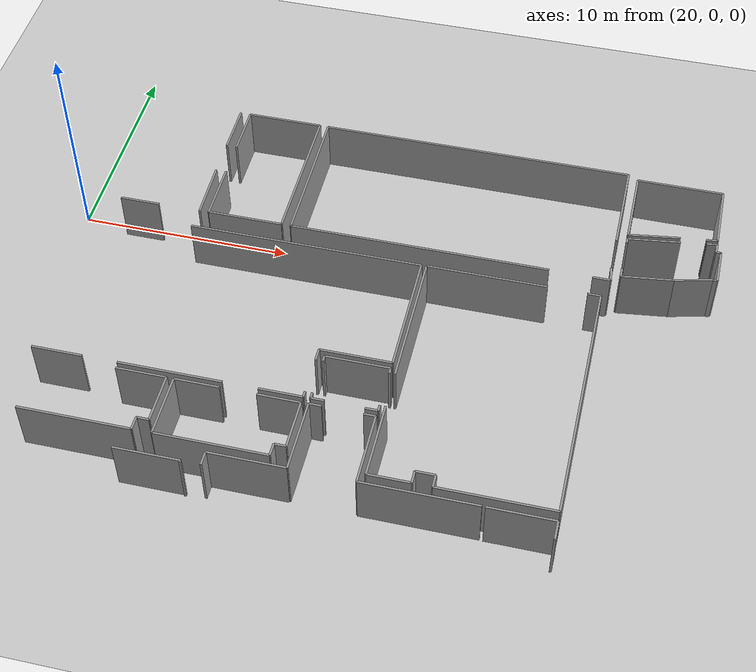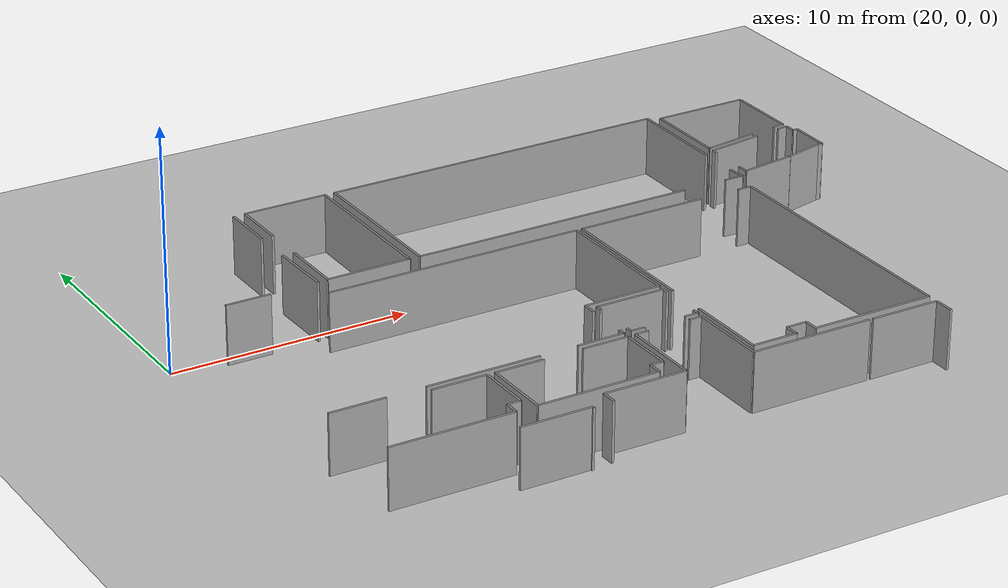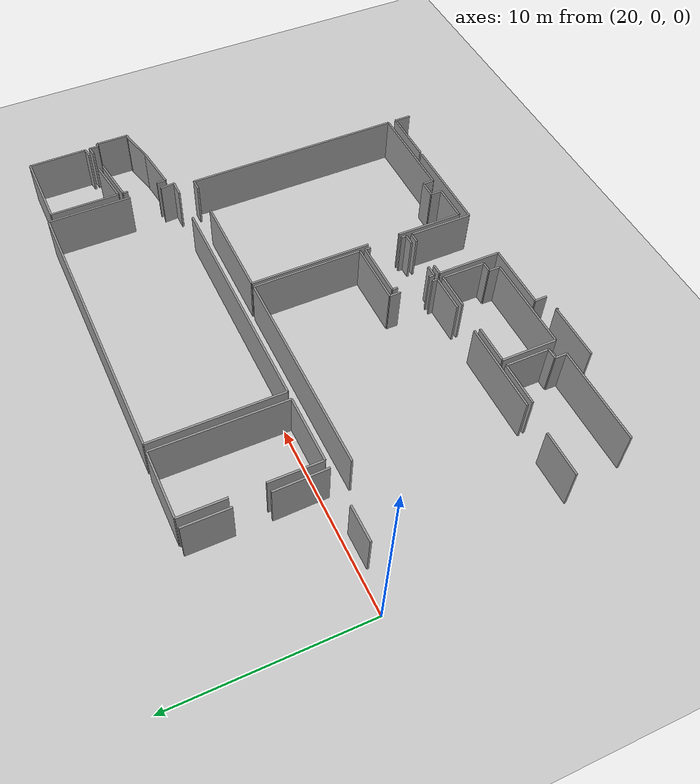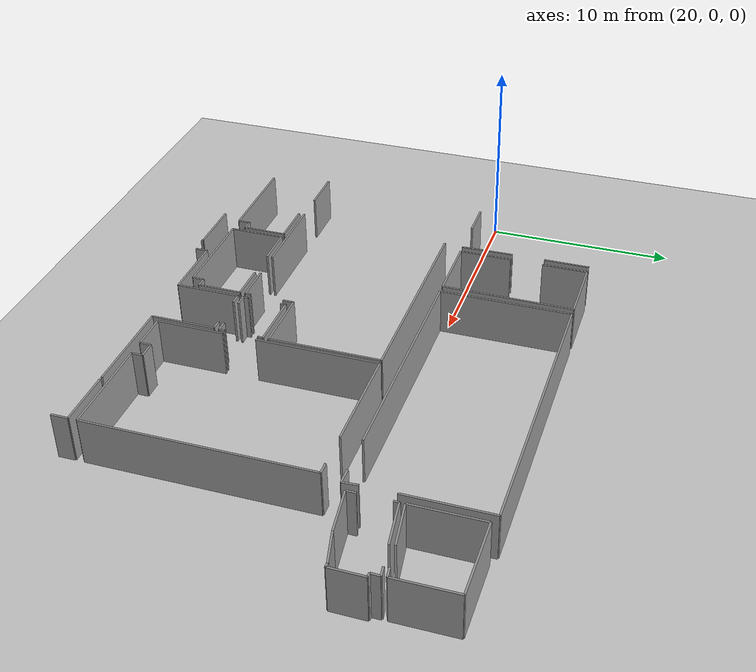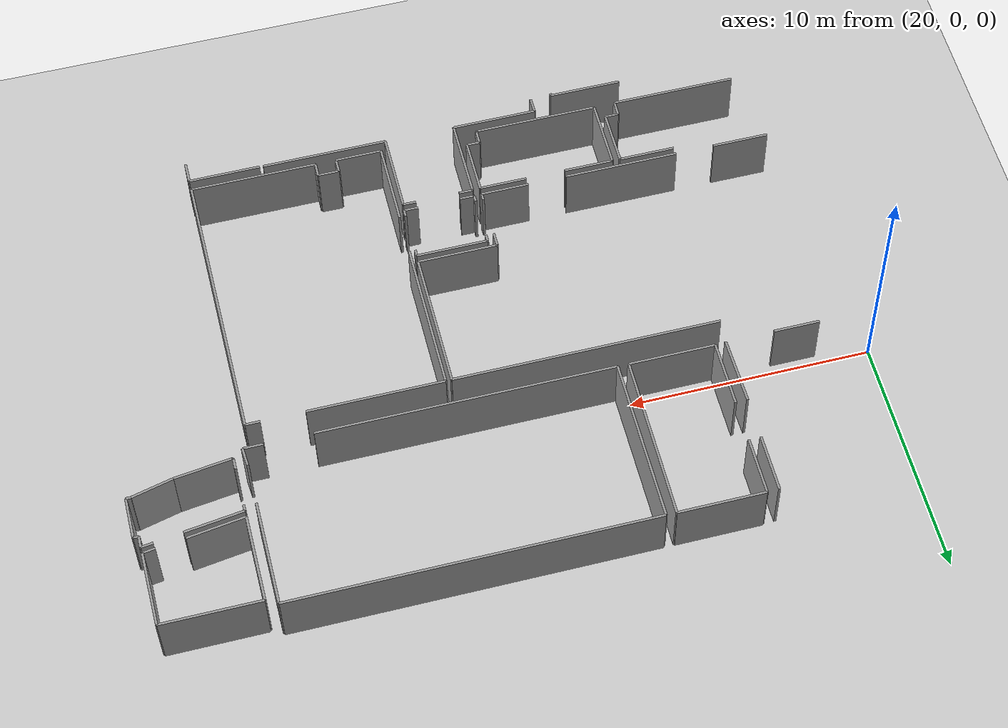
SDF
<sdf version="1.6">
 <world name="default">
  <model name="ground_plane">
   <static>1</static>
   <link name="link">
    <collision name="collision">
     <geometry><plane><normal>0 0 1</normal><size>100 100</size></plane></geometry>
     <surface><friction><ode><mu>100</mu><mu2>50</mu2></ode></friction></surface>
    </collision>
    <visual name="visual">
     <cast_shadows>0</cast_shadows>
     <geometry><plane><normal>0 0 1</normal><size>100 100</size></plane></geometry>
     <material>
      <script><uri>file://media/materials/scripts/gazebo.material</uri><name>Gazebo/Grey</name></script>
     </material>
    </visual>
   </link>
  </model>
  <model name="0510032260_A_40_1_102">
   <static>1</static>
   <link name="Wall_342">
    <collision name="Wall_342_Collision">
     <geometry><box><size>3.28410872145 0.1 2.5</size></box></geometry>
     <pose>1.64205436073 0 1.25 0 0 0</pose>
    </collision>
    <visual name="Wall_342_Visual">
     <pose>1.64205436073 0 1.25 0 0 0</pose>
     <geometry><box><size>3.28410872145 0.1 2.5</size></box></geometry>
     <material>
      <script><uri>file://media/materials/scripts/gazebo.material</uri><name>Gazebo/Grey</name></script>
      <ambient>1 1 1 1</ambient>
     </material>
    </visual>
    <pose>87.2288468495 -38.022680975 0 0 0 3.14159265359</pose>
   </link>
   <link name="Wall_343">
    <collision name="Wall_343_Collision">
     <geometry><box><size>0.58384155048 0.1 2.5</size></box></geometry>
     <pose>0.29192077524 0 1.25 0 0 0</pose>
    </collision>
    <visual name="Wall_343_Visual">
     <pose>0.29192077524 0 1.25 0 0 0</pose>
     <geometry><box><size>0.58384155048 0.1 2.5</size></box></geometry>
     <material>
      <script><uri>file://media/materials/scripts/gazebo.material</uri><name>Gazebo/Grey</name></script>
      <ambient>1 1 1 1</ambient>
     </material>
    </visual>
    <pose>83.944738128 -38.022680975 0 0 0 -1.57079632679</pose>
   </link>
   <link name="Wall_344">
    <collision name="Wall_344_Collision">
     <geometry><box><size>0.29192077524 0.1 2.5</size></box></geometry>
     <pose>0.14596038762 0 1.25 0 0 0</pose>
    </collision>
    <visual name="Wall_344_Visual">
     <pose>0.14596038762 0 1.25 0 0 0</pose>
     <geometry><box><size>0.29192077524 0.1 2.5</size></box></geometry>
     <material>
      <script><uri>file://media/materials/scripts/gazebo.material</uri><name>Gazebo/Grey</name></script>
      <ambient>1 1 1 1</ambient>
     </material>
    </visual>
    <pose>83.944738128 -40.3783547091 0 0 0 -1.57079632679</pose>
   </link>
   <link name="Wall_345">
    <collision name="Wall_345_Collision">
     <geometry><box><size>1.98125360935 0.1 2.5</size></box></geometry>
     <pose>0.990626804673 0 1.25 0 0 0</pose>
    </collision>
    <visual name="Wall_345_Visual">
     <pose>0.990626804673 0 1.25 0 0 0</pose>
     <geometry><box><size>1.98125360935 0.1 2.5</size></box></geometry>
     <material>
      <script><uri>file://media/materials/scripts/gazebo.material</uri><name>Gazebo/Grey</name></script>
      <ambient>1 1 1 1</ambient>
     </material>
    </visual>
    <pose>83.944738128 -40.6702754844 0 0 0 3.14159265359</pose>
   </link>
   <link name="Wall_346">
    <collision name="Wall_346_Collision">
     <geometry><box><size>4.72365890961 0.1 2.5</size></box></geometry>
     <pose>2.36182945481 0 1.25 0 0 0</pose>
    </collision>
    <visual name="Wall_346_Visual">
     <pose>2.36182945481 0 1.25 0 0 0</pose>
     <geometry><box><size>4.72365890961 0.1 2.5</size></box></geometry>
     <material>
      <script><uri>file://media/materials/scripts/gazebo.material</uri><name>Gazebo/Grey</name></script>
      <ambient>1 1 1 1</ambient>
     </material>
    </visual>
    <pose>80.36312406 -40.6702754844 0 0 0 3.14159265359</pose>
   </link>
   <link name="Wall_347">
    <collision name="Wall_347_Collision">
     <geometry><box><size>2.32876625396 0.1 2.5</size></box></geometry>
     <pose>1.16438312698 0 1.25 0 0 0</pose>
    </collision>
    <visual name="Wall_347_Visual">
     <pose>1.16438312698 0 1.25 0 0 0</pose>
     <geometry><box><size>2.32876625396 0.1 2.5</size></box></geometry>
     <material>
      <script><uri>file://media/materials/scripts/gazebo.material</uri><name>Gazebo/Grey</name></script>
      <ambient>1 1 1 1</ambient>
     </material>
    </visual>
    <pose>74.028062471 -40.6702754844 0 0 0 3.14159265359</pose>
   </link>
   <link name="Wall_351">
    <collision name="Wall_351_Collision">
     <geometry><box><size>10.9660673829 0.1 2.5</size></box></geometry>
     <pose>5.48303369147 0 1.25 0 0 0</pose>
    </collision>
    <visual name="Wall_351_Visual">
     <pose>5.48303369147 0 1.25 0 0 0</pose>
     <geometry><box><size>10.9660673829 0.1 2.5</size></box></geometry>
     <material>
      <script><uri>file://media/materials/scripts/gazebo.material</uri><name>Gazebo/Grey</name></script>
      <ambient>1 1 1 1</ambient>
     </material>
    </visual>
    <pose>76.2519910901 -32.2162498334 0 0 0 0.0</pose>
   </link>
   <link name="Wall_352">
    <collision name="Wall_352_Collision">
     <geometry><box><size>5.80644116402 0.1 2.5</size></box></geometry>
     <pose>2.90322058201 0 1.25 0 0 0</pose>
    </collision>
    <visual name="Wall_352_Visual">
     <pose>2.90322058201 0 1.25 0 0 0</pose>
     <geometry><box><size>5.80644116402 0.1 2.5</size></box></geometry>
     <material>
      <script><uri>file://media/materials/scripts/gazebo.material</uri><name>Gazebo/Grey</name></script>
      <ambient>1 1 1 1</ambient>
     </material>
    </visual>
    <pose>87.218058473 -32.2162498334 0 0 0 -1.56893832421</pose>
   </link>
   <link name="Wall_353">
    <collision name="Wall_353_Collision">
     <geometry><box><size>5.12765187813 0.1 2.5</size></box></geometry>
     <pose>2.56382593906 0 1.25 0 0 0</pose>
    </collision>
    <visual name="Wall_353_Visual">
     <pose>2.56382593906 0 1.25 0 0 0</pose>
     <geometry><box><size>5.12765187813 0.1 2.5</size></box></geometry>
     <material>
      <script><uri>file://media/materials/scripts/gazebo.material</uri><name>Gazebo/Grey</name></script>
      <ambient>1 1 1 1</ambient>
     </material>
    </visual>
    <pose>77.4069819834 -43.8940962196 0 0 0 3.14159265359</pose>
   </link>
   <link name="Wall_358">
    <collision name="Wall_358_Collision">
     <geometry><box><size>2.30338183872 0.1 2.5</size></box></geometry>
     <pose>1.15169091936 0 1.25 0 0 0</pose>
    </collision>
    <visual name="Wall_358_Visual">
     <pose>1.15169091936 0 1.25 0 0 0</pose>
     <geometry><box><size>2.30338183872 0.1 2.5</size></box></geometry>
     <material>
      <script><uri>file://media/materials/scripts/gazebo.material</uri><name>Gazebo/Grey</name></script>
      <ambient>1 1 1 1</ambient>
     </material>
    </visual>
    <pose>75.6691649162 -40.9704461946 0 0 0 0.0</pose>
   </link>
   <link name="Wall_359">
    <collision name="Wall_359_Collision">
     <geometry><box><size>2.29995494266 0.1 2.5</size></box></geometry>
     <pose>1.14997747133 0 1.25 0 0 0</pose>
    </collision>
    <visual name="Wall_359_Visual">
     <pose>1.14997747133 0 1.25 0 0 0</pose>
     <geometry><box><size>2.29995494266 0.1 2.5</size></box></geometry>
     <material>
      <script><uri>file://media/materials/scripts/gazebo.material</uri><name>Gazebo/Grey</name></script>
      <ambient>1 1 1 1</ambient>
     </material>
    </visual>
    <pose>77.9725467549 -40.9704461946 0 0 0 -1.57079632679</pose>
   </link>
   <link name="Wall_360">
    <collision name="Wall_360_Collision">
     <geometry><box><size>0.55185718728 0.1 2.5</size></box></geometry>
     <pose>0.27592859364 0 1.25 0 0 0</pose>
    </collision>
    <visual name="Wall_360_Visual">
     <pose>0.27592859364 0 1.25 0 0 0</pose>
     <geometry><box><size>0.55185718728 0.1 2.5</size></box></geometry>
     <material>
      <script><uri>file://media/materials/scripts/gazebo.material</uri><name>Gazebo/Grey</name></script>
      <ambient>1 1 1 1</ambient>
     </material>
    </visual>
    <pose>77.9725467549 -43.2704011372 0 0 0 3.14159265359</pose>
   </link>
   <link name="Wall_361">
    <collision name="Wall_361_Collision">
     <geometry><box><size>0.623845697012 0.1 2.5</size></box></geometry>
     <pose>0.311922848506 0 1.25 0 0 0</pose>
    </collision>
    <visual name="Wall_361_Visual">
     <pose>0.311922848506 0 1.25 0 0 0</pose>
     <geometry><box><size>0.623845697012 0.1 2.5</size></box></geometry>
     <material>
      <script><uri>file://media/materials/scripts/gazebo.material</uri><name>Gazebo/Grey</name></script>
      <ambient>1 1 1 1</ambient>
     </material>
    </visual>
    <pose>77.4206895676 -43.2704011372 0 0 0 -1.59277081109</pose>
   </link>
   <link name="Wall_362">
    <collision name="Wall_362_Collision">
     <geometry><box><size>5.09059063188 0.1 2.5</size></box></geometry>
     <pose>2.54529531594 0 1.25 0 0 0</pose>
    </collision>
    <visual name="Wall_362_Visual">
     <pose>2.54529531594 0 1.25 0 0 0</pose>
     <geometry><box><size>5.09059063188 0.1 2.5</size></box></geometry>
     <material>
      <script><uri>file://media/materials/scripts/gazebo.material</uri><name>Gazebo/Grey</name></script>
      <ambient>1 1 1 1</ambient>
     </material>
    </visual>
    <pose>83.3894540447 -43.874677142 0 0 0 3.14159265359</pose>
   </link>
   <link name="Wall_363">
    <collision name="Wall_363_Collision">
     <geometry><box><size>2.90093097343 0.1 2.5</size></box></geometry>
     <pose>1.45046548671 0 1.25 0 0 0</pose>
    </collision>
    <visual name="Wall_363_Visual">
     <pose>1.45046548671 0 1.25 0 0 0</pose>
     <geometry><box><size>2.90093097343 0.1 2.5</size></box></geometry>
     <material>
      <script><uri>file://media/materials/scripts/gazebo.material</uri><name>Gazebo/Grey</name></script>
      <ambient>1 1 1 1</ambient>
     </material>
    </visual>
    <pose>78.2988634128 -43.874677142 0 0 0 1.57079632679</pose>
   </link>
   <link name="Wall_364">
    <collision name="Wall_364_Collision">
     <geometry><box><size>2.03913007609 0.1 2.5</size></box></geometry>
     <pose>1.01956503804 0 1.25 0 0 0</pose>
    </collision>
    <visual name="Wall_364_Visual">
     <pose>1.01956503804 0 1.25 0 0 0</pose>
     <geometry><box><size>2.03913007609 0.1 2.5</size></box></geometry>
     <material>
      <script><uri>file://media/materials/scripts/gazebo.material</uri><name>Gazebo/Grey</name></script>
      <ambient>1 1 1 1</ambient>
     </material>
    </visual>
    <pose>78.2988634128 -40.9737461685 0 0 0 0.0</pose>
   </link>
   <link name="Wall_365">
    <collision name="Wall_365_Collision">
     <geometry><box><size>1.94812694746 0.1 2.5</size></box></geometry>
     <pose>0.97406347373 0 1.25 0 0 0</pose>
    </collision>
    <visual name="Wall_365_Visual">
     <pose>0.97406347373 0 1.25 0 0 0</pose>
     <geometry><box><size>1.94812694746 0.1 2.5</size></box></geometry>
     <material>
      <script><uri>file://media/materials/scripts/gazebo.material</uri><name>Gazebo/Grey</name></script>
      <ambient>1 1 1 1</ambient>
     </material>
    </visual>
    <pose>81.9841728171 -40.9737461685 0 0 0 0.0</pose>
   </link>
   <link name="Wall_366">
    <collision name="Wall_366_Collision">
     <geometry><box><size>2.30960102045 0.1 2.5</size></box></geometry>
     <pose>1.15480051023 0 1.25 0 0 0</pose>
    </collision>
    <visual name="Wall_366_Visual">
     <pose>1.15480051023 0 1.25 0 0 0</pose>
     <geometry><box><size>2.30960102045 0.1 2.5</size></box></geometry>
     <material>
      <script><uri>file://media/materials/scripts/gazebo.material</uri><name>Gazebo/Grey</name></script>
      <ambient>1 1 1 1</ambient>
     </material>
    </visual>
    <pose>83.9322997646 -40.9737461685 0 0 0 -1.57079632679</pose>
   </link>
   <link name="Wall_367">
    <collision name="Wall_367_Collision">
     <geometry><box><size>0.529391979794 0.1 2.5</size></box></geometry>
     <pose>0.264695989897 0 1.25 0 0 0</pose>
    </collision>
    <visual name="Wall_367_Visual">
     <pose>0.264695989897 0 1.25 0 0 0</pose>
     <geometry><box><size>0.529391979794 0.1 2.5</size></box></geometry>
     <material>
      <script><uri>file://media/materials/scripts/gazebo.material</uri><name>Gazebo/Grey</name></script>
      <ambient>1 1 1 1</ambient>
     </material>
    </visual>
    <pose>83.9322997646 -43.283347189 0 0 0 3.14159265359</pose>
   </link>
   <link name="Wall_368">
    <collision name="Wall_368_Collision">
     <geometry><box><size>0.591482980658 0.1 2.5</size></box></geometry>
     <pose>0.295741490329 0 1.25 0 0 0</pose>
    </collision>
    <visual name="Wall_368_Visual">
     <pose>0.295741490329 0 1.25 0 0 0</pose>
     <geometry><box><size>0.591482980658 0.1 2.5</size></box></geometry>
     <material>
      <script><uri>file://media/materials/scripts/gazebo.material</uri><name>Gazebo/Grey</name></script>
      <ambient>1 1 1 1</ambient>
     </material>
    </visual>
    <pose>83.4029077848 -43.283347189 0 0 0 -1.59354406575</pose>
   </link>
   <link name="Wall_369">
    <collision name="Wall_369_Collision">
     <geometry><box><size>0.578383901204 0.1 2.5</size></box></geometry>
     <pose>0.289191950602 0 1.25 0 0 0</pose>
    </collision>
    <visual name="Wall_369_Visual">
     <pose>0.289191950602 0 1.25 0 0 0</pose>
     <geometry><box><size>0.578383901204 0.1 2.5</size></box></geometry>
     <material>
      <script><uri>file://media/materials/scripts/gazebo.material</uri><name>Gazebo/Grey</name></script>
      <ambient>1 1 1 1</ambient>
     </material>
    </visual>
    <pose>87.2058739537 -40.6542833028 0 0 0 3.14159265359</pose>
   </link>
   <link name="Wall_370">
    <collision name="Wall_370_Collision">
     <geometry><box><size>0.598564511318 0.1 2.5</size></box></geometry>
     <pose>0.299282255659 0 1.25 0 0 0</pose>
    </collision>
    <visual name="Wall_370_Visual">
     <pose>0.299282255659 0 1.25 0 0 0</pose>
     <geometry><box><size>0.598564511318 0.1 2.5</size></box></geometry>
     <material>
      <script><uri>file://media/materials/scripts/gazebo.material</uri><name>Gazebo/Grey</name></script>
      <ambient>1 1 1 1</ambient>
     </material>
    </visual>
    <pose>84.86428857 -40.6542833028 0 0 0 3.14159265359</pose>
   </link>
   <link name="Wall_371">
    <collision name="Wall_371_Collision">
     <geometry><box><size>0.284686216897 0.1 2.5</size></box></geometry>
     <pose>0.142343108449 0 1.25 0 0 0</pose>
    </collision>
    <visual name="Wall_371_Visual">
     <pose>0.142343108449 0 1.25 0 0 0</pose>
     <geometry><box><size>0.284686216897 0.1 2.5</size></box></geometry>
     <material>
      <script><uri>file://media/materials/scripts/gazebo.material</uri><name>Gazebo/Grey</name></script>
      <ambient>1 1 1 1</ambient>
     </material>
    </visual>
    <pose>84.2657240587 -40.6542833028 0 0 0 1.57079632679</pose>
   </link>
   <link name="Wall_372">
    <collision name="Wall_372_Collision">
     <geometry><box><size>0.289128489564 0.1 2.5</size></box></geometry>
     <pose>0.144564244782 0 1.25 0 0 0</pose>
    </collision>
    <visual name="Wall_372_Visual">
     <pose>0.144564244782 0 1.25 0 0 0</pose>
     <geometry><box><size>0.289128489564 0.1 2.5</size></box></geometry>
     <material>
      <script><uri>file://media/materials/scripts/gazebo.material</uri><name>Gazebo/Grey</name></script>
      <ambient>1 1 1 1</ambient>
     </material>
    </visual>
    <pose>84.2657240587 -38.6141378501 0 0 0 1.57079632679</pose>
   </link>
   <link name="Wall_373">
    <collision name="Wall_373_Collision">
     <geometry><box><size>2.9458613884 0.1 2.5</size></box></geometry>
     <pose>1.4729306942 0 1.25 0 0 0</pose>
    </collision>
    <visual name="Wall_373_Visual">
     <pose>1.4729306942 0 1.25 0 0 0</pose>
     <geometry><box><size>2.9458613884 0.1 2.5</size></box></geometry>
     <material>
      <script><uri>file://media/materials/scripts/gazebo.material</uri><name>Gazebo/Grey</name></script>
      <ambient>1 1 1 1</ambient>
     </material>
    </visual>
    <pose>84.2657240587 -38.3250093605 0 0 0 0.0</pose>
   </link>
   <link name="Wall_374">
    <collision name="Wall_374_Collision">
     <geometry><box><size>0.283797762364 0.1 2.5</size></box></geometry>
     <pose>0.141898881182 0 1.25 0 0 0</pose>
    </collision>
    <visual name="Wall_374_Visual">
     <pose>0.141898881182 0 1.25 0 0 0</pose>
     <geometry><box><size>0.283797762364 0.1 2.5</size></box></geometry>
     <material>
      <script><uri>file://media/materials/scripts/gazebo.material</uri><name>Gazebo/Grey</name></script>
      <ambient>1 1 1 1</ambient>
     </material>
    </visual>
    <pose>87.2115854471 -38.3250093605 0 0 0 -1.57079632679</pose>
   </link>
   <link name="Wall_375">
    <collision name="Wall_375_Collision">
     <geometry><box><size>0.288677307866 0.1 2.5</size></box></geometry>
     <pose>0.144338653933 0 1.25 0 0 0</pose>
    </collision>
    <visual name="Wall_375_Visual">
     <pose>0.144338653933 0 1.25 0 0 0</pose>
     <geometry><box><size>0.288677307866 0.1 2.5</size></box></geometry>
     <material>
      <script><uri>file://media/materials/scripts/gazebo.material</uri><name>Gazebo/Grey</name></script>
      <ambient>1 1 1 1</ambient>
     </material>
    </visual>
    <pose>87.2115854471 -40.3656625015 0 0 0 -1.59058266249</pose>
   </link>
   <link name="Wall_376">
    <collision name="Wall_376_Collision">
     <geometry><box><size>1.87844672763 0.1 2.5</size></box></geometry>
     <pose>0.939223363816 0 1.25 0 0 0</pose>
    </collision>
    <visual name="Wall_376_Visual">
     <pose>0.939223363816 0 1.25 0 0 0</pose>
     <geometry><box><size>1.87844672763 0.1 2.5</size></box></geometry>
     <material>
      <script><uri>file://media/materials/scripts/gazebo.material</uri><name>Gazebo/Grey</name></script>
      <ambient>1 1 1 1</ambient>
     </material>
    </visual>
    <pose>74.3354677396 -31.2145808081 0 0 0 3.14159265359</pose>
   </link>
   <link name="Wall_382">
    <collision name="Wall_382_Collision">
     <geometry><box><size>2.39920800624 0.1 2.5</size></box></geometry>
     <pose>1.19960400312 0 1.25 0 0 0</pose>
    </collision>
    <visual name="Wall_382_Visual">
     <pose>1.19960400312 0 1.25 0 0 0</pose>
     <geometry><box><size>2.39920800624 0.1 2.5</size></box></geometry>
     <material>
      <script><uri>file://media/materials/scripts/gazebo.material</uri><name>Gazebo/Grey</name></script>
      <ambient>1 1 1 1</ambient>
     </material>
    </visual>
    <pose>76.2876561935 -24.2757509027 0 0 0 -1.57079632679</pose>
   </link>
   <link name="Wall_383">
    <collision name="Wall_383_Collision">
     <geometry><box><size>2.79279205226 0.1 2.5</size></box></geometry>
     <pose>1.39639602613 0 1.25 0 0 0</pose>
    </collision>
    <visual name="Wall_383_Visual">
     <pose>1.39639602613 0 1.25 0 0 0</pose>
     <geometry><box><size>2.79279205226 0.1 2.5</size></box></geometry>
     <material>
      <script><uri>file://media/materials/scripts/gazebo.material</uri><name>Gazebo/Grey</name></script>
      <ambient>1 1 1 1</ambient>
     </material>
    </visual>
    <pose>76.2876561935 -28.4222951319 0 0 0 -1.55175317453</pose>
   </link>
   <link name="Wall_384">
    <collision name="Wall_384_Collision">
     <geometry><box><size>3.54277591273 0.1 2.5</size></box></geometry>
     <pose>1.77138795636 0 1.25 0 0 0</pose>
    </collision>
    <visual name="Wall_384_Visual">
     <pose>1.77138795636 0 1.25 0 0 0</pose>
     <geometry><box><size>3.54277591273 0.1 2.5</size></box></geometry>
     <material>
      <script><uri>file://media/materials/scripts/gazebo.material</uri><name>Gazebo/Grey</name></script>
      <ambient>1 1 1 1</ambient>
     </material>
    </visual>
    <pose>80.3189551775 -31.1737118996 0 0 0 3.14159265359</pose>
   </link>
   <link name="Wall_385">
    <collision name="Wall_385_Collision">
     <geometry><box><size>2.75915901432 0.1 2.5</size></box></geometry>
     <pose>1.37957950716 0 1.25 0 0 0</pose>
    </collision>
    <visual name="Wall_385_Visual">
     <pose>1.37957950716 0 1.25 0 0 0</pose>
     <geometry><box><size>2.75915901432 0.1 2.5</size></box></geometry>
     <material>
      <script><uri>file://media/materials/scripts/gazebo.material</uri><name>Gazebo/Grey</name></script>
      <ambient>1 1 1 1</ambient>
     </material>
    </visual>
    <pose>76.7761792647 -31.1737118996 0 0 0 1.57079632679</pose>
   </link>
   <link name="Wall_386">
    <collision name="Wall_386_Collision">
     <geometry><box><size>2.39933492832 0.1 2.5</size></box></geometry>
     <pose>1.19966746416 0 1.25 0 0 0</pose>
    </collision>
    <visual name="Wall_386_Visual">
     <pose>1.19966746416 0 1.25 0 0 0</pose>
     <geometry><box><size>2.39933492832 0.1 2.5</size></box></geometry>
     <material>
      <script><uri>file://media/materials/scripts/gazebo.material</uri><name>Gazebo/Grey</name></script>
      <ambient>1 1 1 1</ambient>
     </material>
    </visual>
    <pose>76.7761792647 -26.6804165583 0 0 0 1.57079632679</pose>
   </link>
   <link name="Wall_387">
    <collision name="Wall_387_Collision">
     <geometry><box><size>3.57641026292 0.1 2.5</size></box></geometry>
     <pose>1.78820513146 0 1.25 0 0 0</pose>
    </collision>
    <visual name="Wall_387_Visual">
     <pose>1.78820513146 0 1.25 0 0 0</pose>
     <geometry><box><size>3.57641026292 0.1 2.5</size></box></geometry>
     <material>
      <script><uri>file://media/materials/scripts/gazebo.material</uri><name>Gazebo/Grey</name></script>
      <ambient>1 1 1 1</ambient>
     </material>
    </visual>
    <pose>76.7761792647 -24.2810816299 0 0 0 0.0</pose>
   </link>
   <link name="Wall_388">
    <collision name="Wall_388_Collision">
     <geometry><box><size>6.89271233286 0.1 2.5</size></box></geometry>
     <pose>3.44635616643 0 1.25 0 0 0</pose>
    </collision>
    <visual name="Wall_388_Visual">
     <pose>3.44635616643 0 1.25 0 0 0</pose>
     <geometry><box><size>6.89271233286 0.1 2.5</size></box></geometry>
     <material>
      <script><uri>file://media/materials/scripts/gazebo.material</uri><name>Gazebo/Grey</name></script>
      <ambient>1 1 1 1</ambient>
     </material>
    </visual>
    <pose>80.3525895277 -24.2810816299 0 0 0 -1.57567604352</pose>
   </link>
   <link name="Wall_396">
    <collision name="Wall_396_Collision">
     <geometry><box><size>5.19022446169 0.1 2.5</size></box></geometry>
     <pose>2.59511223085 0 1.25 0 0 0</pose>
    </collision>
    <visual name="Wall_396_Visual">
     <pose>2.59511223085 0 1.25 0 0 0</pose>
     <geometry><box><size>5.19022446169 0.1 2.5</size></box></geometry>
     <material>
      <script><uri>file://media/materials/scripts/gazebo.material</uri><name>Gazebo/Grey</name></script>
      <ambient>1 1 1 1</ambient>
     </material>
    </visual>
    <pose>95.4311860233 -43.8756925186 0 0 0 3.14159265359</pose>
   </link>
   <link name="Wall_397">
    <collision name="Wall_397_Collision">
     <geometry><box><size>0.583587706328 0.1 2.5</size></box></geometry>
     <pose>0.291793853164 0 1.25 0 0 0</pose>
    </collision>
    <visual name="Wall_397_Visual">
     <pose>0.291793853164 0 1.25 0 0 0</pose>
     <geometry><box><size>0.583587706328 0.1 2.5</size></box></geometry>
     <material>
      <script><uri>file://media/materials/scripts/gazebo.material</uri><name>Gazebo/Grey</name></script>
      <ambient>1 1 1 1</ambient>
     </material>
    </visual>
    <pose>90.2409615616 -43.8756925186 0 0 0 1.57079632679</pose>
   </link>
   <link name="Wall_398">
    <collision name="Wall_398_Collision">
     <geometry><box><size>0.871827741358 0.1 2.5</size></box></geometry>
     <pose>0.435913870679 0 1.25 0 0 0</pose>
    </collision>
    <visual name="Wall_398_Visual">
     <pose>0.435913870679 0 1.25 0 0 0</pose>
     <geometry><box><size>0.871827741358 0.1 2.5</size></box></geometry>
     <material>
      <script><uri>file://media/materials/scripts/gazebo.material</uri><name>Gazebo/Grey</name></script>
      <ambient>1 1 1 1</ambient>
     </material>
    </visual>
    <pose>90.2409615616 -43.2921048123 0 0 0 3.14159265359</pose>
   </link>
   <link name="Wall_399">
    <collision name="Wall_399_Collision">
     <geometry><box><size>0.58485692709 0.1 2.5</size></box></geometry>
     <pose>0.292428463545 0 1.25 0 0 0</pose>
    </collision>
    <visual name="Wall_399_Visual">
     <pose>0.292428463545 0 1.25 0 0 0</pose>
     <geometry><box><size>0.58485692709 0.1 2.5</size></box></geometry>
     <material>
      <script><uri>file://media/materials/scripts/gazebo.material</uri><name>Gazebo/Grey</name></script>
      <ambient>1 1 1 1</ambient>
     </material>
    </visual>
    <pose>89.3691338203 -43.2921048123 0 0 0 -1.57079632679</pose>
   </link>
   <link name="Wall_400">
    <collision name="Wall_400_Collision">
     <geometry><box><size>1.90941571422 0.1 2.5</size></box></geometry>
     <pose>0.954707857111 0 1.25 0 0 0</pose>
    </collision>
    <visual name="Wall_400_Visual">
     <pose>0.954707857111 0 1.25 0 0 0</pose>
     <geometry><box><size>1.90941571422 0.1 2.5</size></box></geometry>
     <material>
      <script><uri>file://media/materials/scripts/gazebo.material</uri><name>Gazebo/Grey</name></script>
      <ambient>1 1 1 1</ambient>
     </material>
    </visual>
    <pose>89.3691338203 -43.8769617393 0 0 0 3.14159265359</pose>
   </link>
   <link name="Wall_401">
    <collision name="Wall_401_Collision">
     <geometry><box><size>3.52069147147 0.1 2.5</size></box></geometry>
     <pose>1.76034573574 0 1.25 0 0 0</pose>
    </collision>
    <visual name="Wall_401_Visual">
     <pose>1.76034573574 0 1.25 0 0 0</pose>
     <geometry><box><size>3.52069147147 0.1 2.5</size></box></geometry>
     <material>
      <script><uri>file://media/materials/scripts/gazebo.material</uri><name>Gazebo/Grey</name></script>
      <ambient>1 1 1 1</ambient>
     </material>
    </visual>
    <pose>87.4597181061 -43.8769617393 0 0 0 1.57079632679</pose>
   </link>
   <link name="Wall_402">
    <collision name="Wall_402_Collision">
     <geometry><box><size>6.39357266606 0.1 2.5</size></box></geometry>
     <pose>3.19678633303 0 1.25 0 0 0</pose>
    </collision>
    <visual name="Wall_402_Visual">
     <pose>3.19678633303 0 1.25 0 0 0</pose>
     <geometry><box><size>6.39357266606 0.1 2.5</size></box></geometry>
     <material>
      <script><uri>file://media/materials/scripts/gazebo.material</uri><name>Gazebo/Grey</name></script>
      <ambient>1 1 1 1</ambient>
     </material>
    </visual>
    <pose>87.4597181061 -38.6014456424 0 0 0 1.57079632679</pose>
   </link>
   <link name="Wall_403">
    <collision name="Wall_403_Collision">
     <geometry><box><size>5.57695602785 0.1 2.5</size></box></geometry>
     <pose>2.78847801392 0 1.25 0 0 0</pose>
    </collision>
    <visual name="Wall_403_Visual">
     <pose>2.78847801392 0 1.25 0 0 0</pose>
     <geometry><box><size>5.57695602785 0.1 2.5</size></box></geometry>
     <material>
      <script><uri>file://media/materials/scripts/gazebo.material</uri><name>Gazebo/Grey</name></script>
      <ambient>1 1 1 1</ambient>
     </material>
    </visual>
    <pose>87.4597181061 -32.2078729764 0 0 0 0.0</pose>
   </link>
   <link name="Wall_404">
    <collision name="Wall_404_Collision">
     <geometry><box><size>0.604149082671 0.1 2.5</size></box></geometry>
     <pose>0.302074541335 0 1.25 0 0 0</pose>
    </collision>
    <visual name="Wall_404_Visual">
     <pose>0.302074541335 0 1.25 0 0 0</pose>
     <geometry><box><size>0.604149082671 0.1 2.5</size></box></geometry>
     <material>
      <script><uri>file://media/materials/scripts/gazebo.material</uri><name>Gazebo/Grey</name></script>
      <ambient>1 1 1 1</ambient>
     </material>
    </visual>
    <pose>94.8346522652 -32.2078729764 0 0 0 0.0</pose>
   </link>
   <link name="Wall_405">
    <collision name="Wall_405_Collision">
     <geometry><box><size>11.6678220274 0.1 2.5</size></box></geometry>
     <pose>5.83391101368 0 1.25 0 0 0</pose>
    </collision>
    <visual name="Wall_405_Visual">
     <pose>5.83391101368 0 1.25 0 0 0</pose>
     <geometry><box><size>11.6678220274 0.1 2.5</size></box></geometry>
     <material>
      <script><uri>file://media/materials/scripts/gazebo.material</uri><name>Gazebo/Grey</name></script>
      <ambient>1 1 1 1</ambient>
     </material>
    </visual>
    <pose>95.4388013479 -32.2078729764 0 0 0 -1.57144900431</pose>
   </link>
   <link name="Wall_406">
    <collision name="Wall_406_Collision">
     <geometry><box><size>0.82245505372 0.1 2.5</size></box></geometry>
     <pose>0.41122752686 0 1.25 0 0 0</pose>
    </collision>
    <visual name="Wall_406_Visual">
     <pose>0.41122752686 0 1.25 0 0 0</pose>
     <geometry><box><size>0.82245505372 0.1 2.5</size></box></geometry>
     <material>
      <script><uri>file://media/materials/scripts/gazebo.material</uri><name>Gazebo/Grey</name></script>
      <ambient>1 1 1 1</ambient>
     </material>
    </visual>
    <pose>95.7332605647 -31.1763772632 0 0 0 3.14159265359</pose>
   </link>
   <link name="Wall_407">
    <collision name="Wall_407_Collision">
     <geometry><box><size>12.1585002887 0.1 2.5</size></box></geometry>
     <pose>6.07925014437 0 1.25 0 0 0</pose>
    </collision>
    <visual name="Wall_407_Visual">
     <pose>6.07925014437 0 1.25 0 0 0</pose>
     <geometry><box><size>12.1585002887 0.1 2.5</size></box></geometry>
     <material>
      <script><uri>file://media/materials/scripts/gazebo.material</uri><name>Gazebo/Grey</name></script>
      <ambient>1 1 1 1</ambient>
     </material>
    </visual>
    <pose>92.9300595899 -31.1763772632 0 0 0 3.14159265359</pose>
   </link>
   <link name="Wall_408">
    <collision name="Wall_408_Collision">
     <geometry><box><size>6.88958413982 0.1 2.5</size></box></geometry>
     <pose>3.44479206991 0 1.25 0 0 0</pose>
    </collision>
    <visual name="Wall_408_Visual">
     <pose>3.44479206991 0 1.25 0 0 0</pose>
     <geometry><box><size>6.88958413982 0.1 2.5</size></box></geometry>
     <material>
      <script><uri>file://media/materials/scripts/gazebo.material</uri><name>Gazebo/Grey</name></script>
      <ambient>1 1 1 1</ambient>
     </material>
    </visual>
    <pose>80.7715593012 -31.1763772632 0 0 0 1.57079632679</pose>
   </link>
   <link name="Wall_409">
    <collision name="Wall_409_Collision">
     <geometry><box><size>14.8995094462 0.1 2.5</size></box></geometry>
     <pose>7.44975472309 0 1.25 0 0 0</pose>
    </collision>
    <visual name="Wall_409_Visual">
     <pose>7.44975472309 0 1.25 0 0 0</pose>
     <geometry><box><size>14.8995094462 0.1 2.5</size></box></geometry>
     <material>
      <script><uri>file://media/materials/scripts/gazebo.material</uri><name>Gazebo/Grey</name></script>
      <ambient>1 1 1 1</ambient>
     </material>
    </visual>
    <pose>80.7715593012 -24.2867931234 0 0 0 0.0</pose>
   </link>
   <link name="Wall_410">
    <collision name="Wall_410_Collision">
     <geometry><box><size>4.40368835553 0.1 2.5</size></box></geometry>
     <pose>2.20184417777 0 1.25 0 0 0</pose>
    </collision>
    <visual name="Wall_410_Visual">
     <pose>2.20184417777 0 1.25 0 0 0</pose>
     <geometry><box><size>4.40368835553 0.1 2.5</size></box></geometry>
     <material>
      <script><uri>file://media/materials/scripts/gazebo.material</uri><name>Gazebo/Grey</name></script>
      <ambient>1 1 1 1</ambient>
     </material>
    </visual>
    <pose>95.6710687473 -24.2867931234 0 0 0 -1.57079632679</pose>
   </link>
   <link name="Wall_411">
    <collision name="Wall_411_Collision">
     <geometry><box><size>0.775073838344 0.1 2.5</size></box></geometry>
     <pose>0.387536919172 0 1.25 0 0 0</pose>
    </collision>
    <visual name="Wall_411_Visual">
     <pose>0.387536919172 0 1.25 0 0 0</pose>
     <geometry><box><size>0.775073838344 0.1 2.5</size></box></geometry>
     <material>
      <script><uri>file://media/materials/scripts/gazebo.material</uri><name>Gazebo/Grey</name></script>
      <ambient>1 1 1 1</ambient>
     </material>
    </visual>
    <pose>95.6710687473 -30.4038025854 0 0 0 -1.49047011181</pose>
   </link>
   <link name="Wall_412">
    <collision name="Wall_412_Collision">
     <geometry><box><size>0.203075321906 0.1 2.5</size></box></geometry>
     <pose>0.101537660953 0 1.25 0 0 0</pose>
    </collision>
    <visual name="Wall_412_Visual">
     <pose>0.101537660953 0 1.25 0 0 0</pose>
     <geometry><box><size>0.203075321906 0.1 2.5</size></box></geometry>
     <material>
      <script><uri>file://media/materials/scripts/gazebo.material</uri><name>Gazebo/Grey</name></script>
      <ambient>1 1 1 1</ambient>
     </material>
    </visual>
    <pose>100.431915825 -30.1175933036 0 0 0 3.14159265359</pose>
   </link>
   <link name="Wall_413">
    <collision name="Wall_413_Collision">
     <geometry><box><size>1.74786713696 0.1 2.5</size></box></geometry>
     <pose>0.87393356848 0 1.25 0 0 0</pose>
    </collision>
    <visual name="Wall_413_Visual">
     <pose>0.87393356848 0 1.25 0 0 0</pose>
     <geometry><box><size>1.74786713696 0.1 2.5</size></box></geometry>
     <material>
      <script><uri>file://media/materials/scripts/gazebo.material</uri><name>Gazebo/Grey</name></script>
      <ambient>1 1 1 1</ambient>
     </material>
    </visual>
    <pose>100.228840503 -30.1175933036 0 0 0 -2.90267249433</pose>
   </link>
   <link name="Wall_414">
    <collision name="Wall_414_Collision">
     <geometry><box><size>2.40015070576 0.1 2.5</size></box></geometry>
     <pose>1.20007535288 0 1.25 0 0 0</pose>
    </collision>
    <visual name="Wall_414_Visual">
     <pose>1.20007535288 0 1.25 0 0 0</pose>
     <geometry><box><size>2.40015070576 0.1 2.5</size></box></geometry>
     <material>
      <script><uri>file://media/materials/scripts/gazebo.material</uri><name>Gazebo/Grey</name></script>
      <ambient>1 1 1 1</ambient>
     </material>
    </visual>
    <pose>98.5306231239 -30.5312323499 0 0 0 -3.01124263713</pose>
   </link>
   <link name="Wall_415">
    <collision name="Wall_415_Collision">
     <geometry><box><size>0.493473032232 0.1 2.5</size></box></geometry>
     <pose>0.246736516116 0 1.25 0 0 0</pose>
    </collision>
    <visual name="Wall_415_Visual">
     <pose>0.246736516116 0 1.25 0 0 0</pose>
     <geometry><box><size>0.493473032232 0.1 2.5</size></box></geometry>
     <material>
      <script><uri>file://media/materials/scripts/gazebo.material</uri><name>Gazebo/Grey</name></script>
      <ambient>1 1 1 1</ambient>
     </material>
    </visual>
    <pose>96.1508341953 -30.8432068132 0 0 0 1.57079632679</pose>
   </link>
   <link name="Wall_416">
    <collision name="Wall_416_Collision">
     <geometry><box><size>0.265013295087 0.1 2.5</size></box></geometry>
     <pose>0.132506647544 0 1.25 0 0 0</pose>
    </collision>
    <visual name="Wall_416_Visual">
     <pose>0.132506647544 0 1.25 0 0 0</pose>
     <geometry><box><size>0.265013295087 0.1 2.5</size></box></geometry>
     <material>
      <script><uri>file://media/materials/scripts/gazebo.material</uri><name>Gazebo/Grey</name></script>
      <ambient>1 1 1 1</ambient>
     </material>
    </visual>
    <pose>96.1508341953 -28.7252581278 0 0 0 1.57079632679</pose>
   </link>
   <link name="Wall_417">
    <collision name="Wall_417_Collision">
     <geometry><box><size>2.43752615111 0.1 2.5</size></box></geometry>
     <pose>1.21876307555 0 1.25 0 0 0</pose>
    </collision>
    <visual name="Wall_417_Visual">
     <pose>1.21876307555 0 1.25 0 0 0</pose>
     <geometry><box><size>2.43752615111 0.1 2.5</size></box></geometry>
     <material>
      <script><uri>file://media/materials/scripts/gazebo.material</uri><name>Gazebo/Grey</name></script>
      <ambient>1 1 1 1</ambient>
     </material>
    </visual>
    <pose>96.1508341953 -28.4602448327 0 0 0 0.1350633809</pose>
   </link>
   <link name="Wall_418">
    <collision name="Wall_418_Collision">
     <geometry><box><size>0.490674508752 0.1 2.5</size></box></geometry>
     <pose>0.245337254376 0 1.25 0 0 0</pose>
    </collision>
    <visual name="Wall_418_Visual">
     <pose>0.245337254376 0 1.25 0 0 0</pose>
     <geometry><box><size>0.490674508752 0.1 2.5</size></box></geometry>
     <material>
      <script><uri>file://media/materials/scripts/gazebo.material</uri><name>Gazebo/Grey</name></script>
      <ambient>1 1 1 1</ambient>
     </material>
    </visual>
    <pose>99.7478058346 -27.9634718265 0 0 0 0.136483001563</pose>
   </link>
   <link name="Wall_419">
    <collision name="Wall_419_Collision">
     <geometry><box><size>0.474898601673 0.1 2.5</size></box></geometry>
     <pose>0.237449300836 0 1.25 0 0 0</pose>
    </collision>
    <visual name="Wall_419_Visual">
     <pose>0.237449300836 0 1.25 0 0 0</pose>
     <geometry><box><size>0.474898601673 0.1 2.5</size></box></geometry>
     <material>
      <script><uri>file://media/materials/scripts/gazebo.material</uri><name>Gazebo/Grey</name></script>
      <ambient>1 1 1 1</ambient>
     </material>
    </visual>
    <pose>100.233917386 -27.8967108144 0 0 0 -1.58950571791</pose>
   </link>
   <link name="Wall_420">
    <collision name="Wall_420_Collision">
     <geometry><box><size>0.215925191268 0.1 2.5</size></box></geometry>
     <pose>0.107962595634 0 1.25 0 0 0</pose>
    </collision>
    <visual name="Wall_420_Visual">
     <pose>0.107962595634 0 1.25 0 0 0</pose>
     <geometry><box><size>0.215925191268 0.1 2.5</size></box></geometry>
     <material>
      <script><uri>file://media/materials/scripts/gazebo.material</uri><name>Gazebo/Grey</name></script>
      <ambient>1 1 1 1</ambient>
     </material>
    </visual>
    <pose>100.225032841 -28.3715263014 0 0 0 -0.0382166779048</pose>
   </link>
   <link name="Wall_421">
    <collision name="Wall_421_Collision">
     <geometry><box><size>1.73783977807 0.1 2.5</size></box></geometry>
     <pose>0.868919889034 0 1.25 0 0 0</pose>
    </collision>
    <visual name="Wall_421_Visual">
     <pose>0.868919889034 0 1.25 0 0 0</pose>
     <geometry><box><size>1.73783977807 0.1 2.5</size></box></geometry>
     <material>
      <script><uri>file://media/materials/scripts/gazebo.material</uri><name>Gazebo/Grey</name></script>
      <ambient>1 1 1 1</ambient>
     </material>
    </visual>
    <pose>100.440800371 -28.3797762364 0 0 0 -1.57590875669</pose>
   </link>
   <link name="Wall_422">
    <collision name="Wall_422_Collision">
     <geometry><box><size>0.513538719066 0.1 2.5</size></box></geometry>
     <pose>0.256769359533 0 1.25 0 0 0</pose>
    </collision>
    <visual name="Wall_422_Visual">
     <pose>0.256769359533 0 1.25 0 0 0</pose>
     <geometry><box><size>0.513538719066 0.1 2.5</size></box></geometry>
     <material>
      <script><uri>file://media/materials/scripts/gazebo.material</uri><name>Gazebo/Grey</name></script>
      <ambient>1 1 1 1</ambient>
     </material>
    </visual>
    <pose>100.218686737 -27.6419782075 0 0 0 -2.99050294661</pose>
   </link>
   <link name="Wall_423">
    <collision name="Wall_423_Collision">
     <geometry><box><size>2.40298930925 0.1 2.5</size></box></geometry>
     <pose>1.20149465462 0 1.25 0 0 0</pose>
    </collision>
    <visual name="Wall_423_Visual">
     <pose>1.20149465462 0 1.25 0 0 0</pose>
     <geometry><box><size>2.40298930925 0.1 2.5</size></box></geometry>
     <material>
      <script><uri>file://media/materials/scripts/gazebo.material</uri><name>Gazebo/Grey</name></script>
      <ambient>1 1 1 1</ambient>
     </material>
    </visual>
    <pose>98.5280846824 -27.8600303344 0 0 0 -2.99876189244</pose>
   </link>
   <link name="Wall_424">
    <collision name="Wall_424_Collision">
     <geometry><box><size>3.65522887223 0.1 2.5</size></box></geometry>
     <pose>1.82761443612 0 1.25 0 0 0</pose>
    </collision>
    <visual name="Wall_424_Visual">
     <pose>1.82761443612 0 1.25 0 0 0</pose>
     <geometry><box><size>3.65522887223 0.1 2.5</size></box></geometry>
     <material>
      <script><uri>file://media/materials/scripts/gazebo.material</uri><name>Gazebo/Grey</name></script>
      <ambient>1 1 1 1</ambient>
     </material>
    </visual>
    <pose>96.1495649746 -28.2020853297 0 0 0 1.57079632679</pose>
   </link>
   <link name="Wall_425">
    <collision name="Wall_425_Collision">
     <geometry><box><size>4.05516033431 0.1 2.5</size></box></geometry>
     <pose>2.02758016716 0 1.25 0 0 0</pose>
    </collision>
    <visual name="Wall_425_Visual">
     <pose>2.02758016716 0 1.25 0 0 0</pose>
     <geometry><box><size>4.05516033431 0.1 2.5</size></box></geometry>
     <material>
      <script><uri>file://media/materials/scripts/gazebo.material</uri><name>Gazebo/Grey</name></script>
      <ambient>1 1 1 1</ambient>
     </material>
    </visual>
    <pose>96.1495649746 -24.5468564575 0 0 0 0.0</pose>
   </link>
   <link name="Wall_426">
    <collision name="Wall_426_Collision">
     <geometry><box><size>3.09515323834 0.1 2.5</size></box></geometry>
     <pose>1.54757661917 0 1.25 0 0 0</pose>
    </collision>
    <visual name="Wall_426_Visual">
     <pose>1.54757661917 0 1.25 0 0 0</pose>
     <geometry><box><size>3.09515323834 0.1 2.5</size></box></geometry>
     <material>
      <script><uri>file://media/materials/scripts/gazebo.material</uri><name>Gazebo/Grey</name></script>
      <ambient>1 1 1 1</ambient>
     </material>
    </visual>
    <pose>100.204725309 -24.5468564575 0 0 0 -1.56628557251</pose>
   </link>
   <link name="Wall_496">
    <collision name="Wall_496_Collision">
     <geometry><box><size>0.642606471757 0.1 2.5</size></box></geometry>
     <pose>0.321303235878 0 1.25 0 0 0</pose>
    </collision>
    <visual name="Wall_496_Visual">
     <pose>0.321303235878 0 1.25 0 0 0</pose>
     <geometry><box><size>0.642606471757 0.1 2.5</size></box></geometry>
     <material>
      <script><uri>file://media/materials/scripts/gazebo.material</uri><name>Gazebo/Grey</name></script>
      <ambient>1 1 1 1</ambient>
     </material>
    </visual>
    <pose>80.7773977167 -44.9512301922 0 0 0 1.57079632679</pose>
   </link>
   <link name="Wall_497">
    <collision name="Wall_497_Collision">
     <geometry><box><size>3.47994948501 0.1 2.5</size></box></geometry>
     <pose>1.73997474251 0 1.25 0 0 0</pose>
    </collision>
    <visual name="Wall_497_Visual">
     <pose>1.73997474251 0 1.25 0 0 0</pose>
     <geometry><box><size>3.47994948501 0.1 2.5</size></box></geometry>
     <material>
      <script><uri>file://media/materials/scripts/gazebo.material</uri><name>Gazebo/Grey</name></script>
      <ambient>1 1 1 1</ambient>
     </material>
    </visual>
    <pose>80.7773977167 -44.3086237205 0 0 0 0.0</pose>
   </link>
   <link name="Wall_498">
    <collision name="Wall_498_Collision">
     <geometry><box><size>3.35480431789 0.1 2.5</size></box></geometry>
     <pose>1.67740215894 0 1.25 0 0 0</pose>
    </collision>
    <visual name="Wall_498_Visual">
     <pose>1.67740215894 0 1.25 0 0 0</pose>
     <geometry><box><size>3.35480431789 0.1 2.5</size></box></geometry>
     <material>
      <script><uri>file://media/materials/scripts/gazebo.material</uri><name>Gazebo/Grey</name></script>
      <ambient>1 1 1 1</ambient>
     </material>
    </visual>
    <pose>84.2573472017 -44.3086237205 0 0 0 1.57079632679</pose>
   </link>
   <link name="Wall_499">
    <collision name="Wall_499_Collision">
     <geometry><box><size>0.567468602651 0.1 2.5</size></box></geometry>
     <pose>0.283734301326 0 1.25 0 0 0</pose>
    </collision>
    <visual name="Wall_499_Visual">
     <pose>0.283734301326 0 1.25 0 0 0</pose>
     <geometry><box><size>0.567468602651 0.1 2.5</size></box></geometry>
     <material>
      <script><uri>file://media/materials/scripts/gazebo.material</uri><name>Gazebo/Grey</name></script>
      <ambient>1 1 1 1</ambient>
     </material>
    </visual>
    <pose>84.2573472017 -40.9538194026 0 0 0 0.0</pose>
   </link>
   <link name="Wall_500">
    <collision name="Wall_500_Collision">
     <geometry><box><size>0.533072720004 0.1 2.5</size></box></geometry>
     <pose>0.266536360002 0 1.25 0 0 0</pose>
    </collision>
    <visual name="Wall_500_Visual">
     <pose>0.266536360002 0 1.25 0 0 0</pose>
     <geometry><box><size>0.533072720004 0.1 2.5</size></box></geometry>
     <material>
      <script><uri>file://media/materials/scripts/gazebo.material</uri><name>Gazebo/Grey</name></script>
      <ambient>1 1 1 1</ambient>
     </material>
    </visual>
    <pose>86.6469091301 -40.9538194026 0 0 0 0.0</pose>
   </link>
   <link name="Wall_501">
    <collision name="Wall_501_Collision">
     <geometry><box><size>3.36457731776 0.1 2.5</size></box></geometry>
     <pose>1.68228865888 0 1.25 0 0 0</pose>
    </collision>
    <visual name="Wall_501_Visual">
     <pose>1.68228865888 0 1.25 0 0 0</pose>
     <geometry><box><size>3.36457731776 0.1 2.5</size></box></geometry>
     <material>
      <script><uri>file://media/materials/scripts/gazebo.material</uri><name>Gazebo/Grey</name></script>
      <ambient>1 1 1 1</ambient>
     </material>
    </visual>
    <pose>87.1799818501 -40.9538194026 0 0 0 -1.57079632679</pose>
   </link>
   <link name="Wall_502">
    <collision name="Wall_502_Collision">
     <geometry><box><size>5.16902847497 0.1 2.5</size></box></geometry>
     <pose>2.58451423748 0 1.25 0 0 0</pose>
    </collision>
    <visual name="Wall_502_Visual">
     <pose>2.58451423748 0 1.25 0 0 0</pose>
     <geometry><box><size>5.16902847497 0.1 2.5</size></box></geometry>
     <material>
      <script><uri>file://media/materials/scripts/gazebo.material</uri><name>Gazebo/Grey</name></script>
      <ambient>1 1 1 1</ambient>
     </material>
    </visual>
    <pose>87.1799818501 -44.3183967203 0 0 0 0.0</pose>
   </link>
   <link name="Wall_514">
    <collision name="Wall_514_Collision">
     <geometry><box><size>2.97035734911 0.1 2.5</size></box></geometry>
     <pose>1.48517867455 0 1.25 0 0 0</pose>
    </collision>
    <visual name="Wall_514_Visual">
     <pose>1.48517867455 0 1.25 0 0 0</pose>
     <geometry><box><size>2.97035734911 0.1 2.5</size></box></geometry>
     <material>
      <script><uri>file://media/materials/scripts/gazebo.material</uri><name>Gazebo/Grey</name></script>
      <ambient>1 1 1 1</ambient>
     </material>
    </visual>
    <pose>76.9307703535 -44.9428533352 0 0 0 0.0</pose>
   </link>
   <link name="Wall_515">
    <collision name="Wall_515_Collision">
     <geometry><box><size>0.100141518115 0.1 2.5</size></box></geometry>
     <pose>0.0500707590575 0 1.25 0 0 0</pose>
    </collision>
    <visual name="Wall_515_Visual">
     <pose>0.0500707590575 0 1.25 0 0 0</pose>
     <geometry><box><size>0.100141518115 0.1 2.5</size></box></geometry>
     <material>
      <script><uri>file://media/materials/scripts/gazebo.material</uri><name>Gazebo/Grey</name></script>
      <ambient>1 1 1 1</ambient>
     </material>
    </visual>
    <pose>79.9011277026 -44.9428533352 0 0 0 -1.57079632679</pose>
   </link>
   <link name="Wall_530">
    <collision name="Wall_530_Collision">
     <geometry><box><size>2.94459216764 0.1 2.5</size></box></geometry>
     <pose>1.47229608382 0 1.25 0 0 0</pose>
    </collision>
    <visual name="Wall_530_Visual">
     <pose>1.47229608382 0 1.25 0 0 0</pose>
     <geometry><box><size>2.94459216764 0.1 2.5</size></box></geometry>
     <material>
      <script><uri>file://media/materials/scripts/gazebo.material</uri><name>Gazebo/Grey</name></script>
      <ambient>1 1 1 1</ambient>
     </material>
    </visual>
    <pose>92.4942091803 -44.329438941 0 0 0 0.0</pose>
   </link>
   <link name="Wall_531">
    <collision name="Wall_531_Collision">
     <geometry><box><size>0.873350806272 0.1 2.5</size></box></geometry>
     <pose>0.436675403136 0 1.25 0 0 0</pose>
    </collision>
    <visual name="Wall_531_Visual">
     <pose>0.436675403136 0 1.25 0 0 0</pose>
     <geometry><box><size>0.873350806272 0.1 2.5</size></box></geometry>
     <material>
      <script><uri>file://media/materials/scripts/gazebo.material</uri><name>Gazebo/Grey</name></script>
      <ambient>1 1 1 1</ambient>
     </material>
    </visual>
    <pose>95.4388013479 -44.329438941 0 0 0 -1.57079632679</pose>
   </link>
   <pose>-50.3 30.7834798226 0 0 0 0</pose>
  </model>
 </world>
</sdf>
